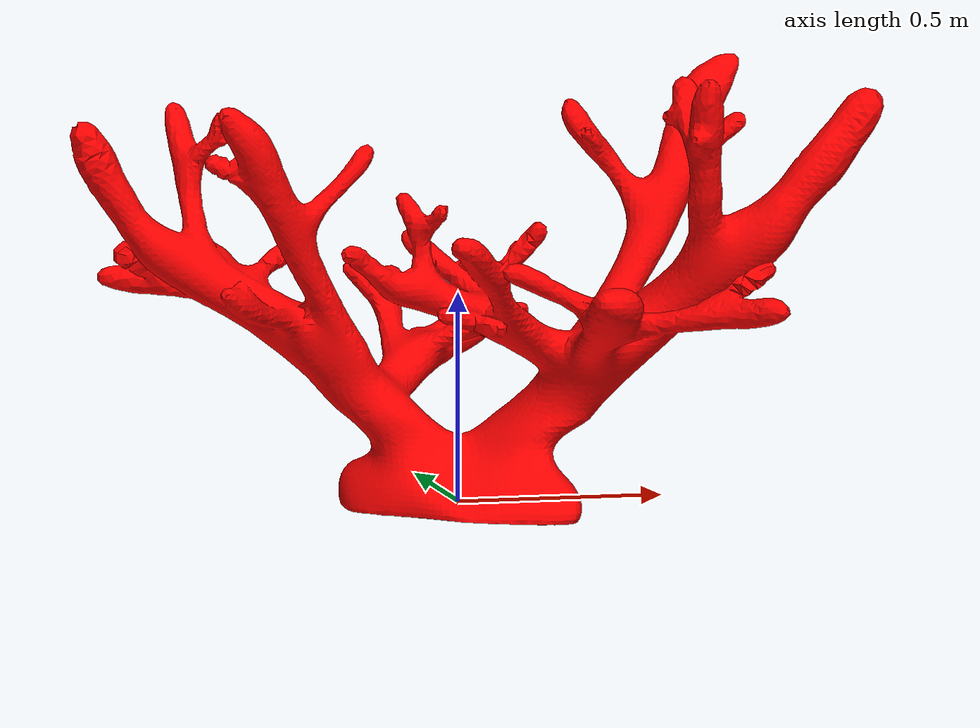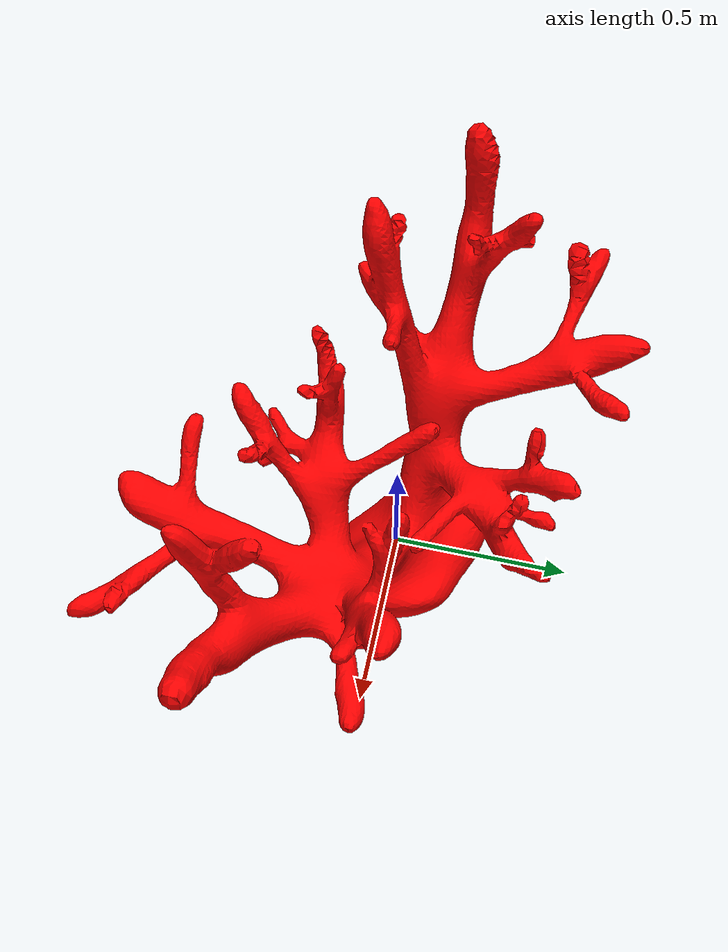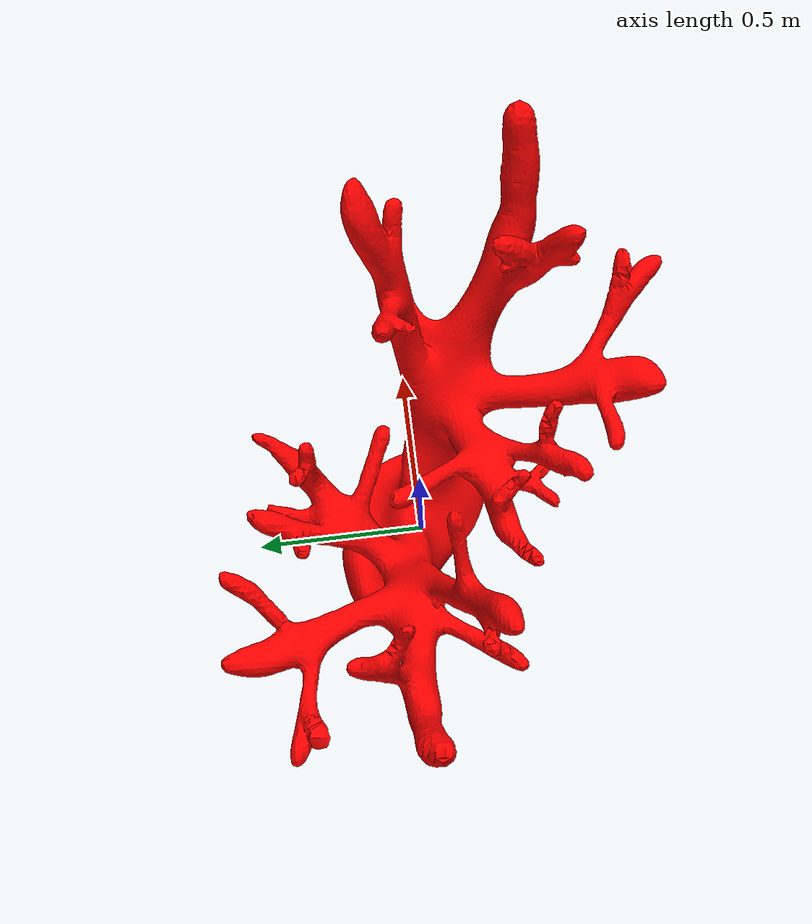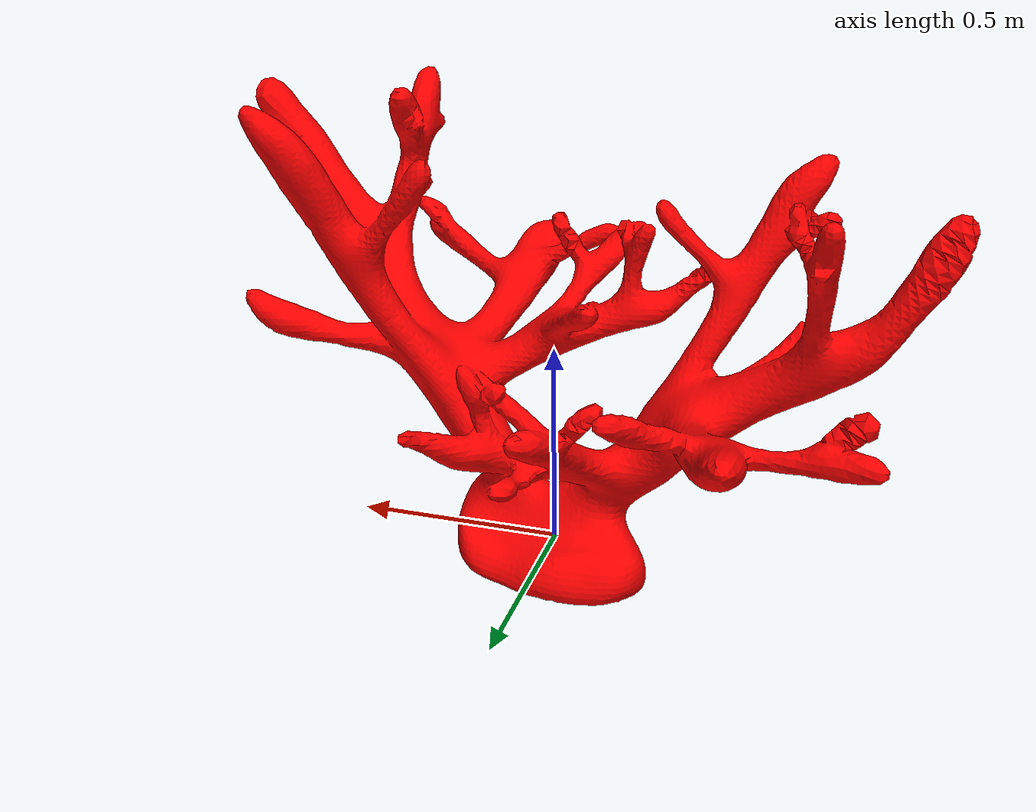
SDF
<?xml version="1.0" ?>
<sdf version="1.6">

    <model name="acropora_cervicornis2">
        <static>true</static>
        <link name="link">
            <collision name="acropora_cervicornis2">
                <pose>15 0 -100 0 0 0</pose>
                <geometry>
                    <mesh>
                        <uri>model://coral_cervicornis/meshes/acropora_cervicornis.stl</uri>
                        <scale>0.01 0.01 0.01</scale>
                    </mesh>
                </geometry>
            </collision>

            <visual name="acropora_cervicornis2">
                <geometry>
                    <mesh>
                        <uri>model://coral_cervicornis/meshes/acropora_cervicornis.stl</uri>
                        <scale>0.01 0.01 0.01</scale>
                    </mesh>
                </geometry>
                <material>
                    <ambient>1 0 0 1</ambient>
                    <diffuse>1 0 0 1</diffuse>
                    <specular>1 0 0 1</specular>
                    <emissive>0 0 0 1</emissive>
                </material>
            </visual>
        </link>
    </model>
</sdf>
